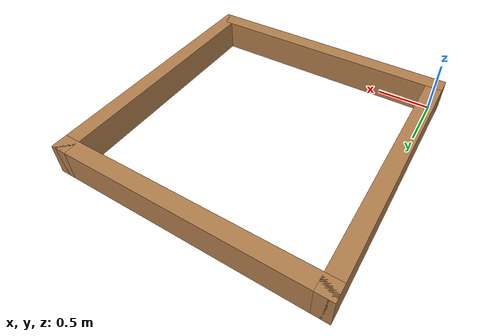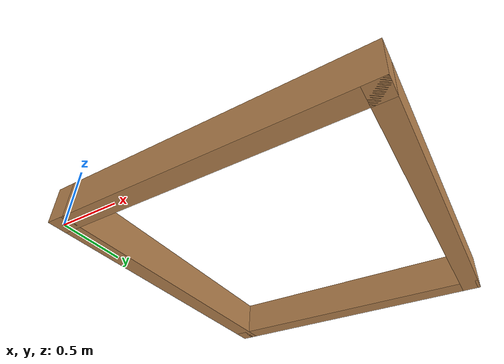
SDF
<?xml version='1.0'?>
<sdf version='1.6'>
  <model name='Pared'>
    <pose frame=''>1.175 1.175 0 0 -0 0</pose>
    <link name='Wall_23'>
      <collision name='Wall_23_Collision'>
        <geometry>
          <box>
            <size>2.5 0.15 0.3</size>
          </box>
        </geometry>
        <pose frame=''>0 0 0.15 0 -0 0</pose>
      </collision>
      <visual name='Wall_23_Visual'>
        <pose frame=''>0 0 0.15 0 -0 0</pose>
        <geometry>
          <box>
            <size>2.5 0.15 0.3</size>
          </box>
        </geometry>
        <material>
          <script>
            <uri>file://media/materials/scripts/gazebo.material</uri>
            <name>Gazebo/Wood</name>
          </script>
          <ambient>1 1 1 1</ambient>
        </material>
      </visual>
      <pose frame=''>-1.175 0 0 0 -0 1.5708</pose>
    </link>
    <link name='Wall_28'>
      <collision name='Wall_28_Collision'>
        <geometry>
          <box>
            <size>2.5 0.15 0.3</size>
          </box>
        </geometry>
        <pose frame=''>0 0 0.15 0 -0 0</pose>
      </collision>
      <visual name='Wall_28_Visual'>
        <pose frame=''>0 0 0.15 0 -0 0</pose>
        <geometry>
          <box>
            <size>2.5 0.15 0.3</size>
          </box>
        </geometry>
        <material>
          <script>
            <uri>file://media/materials/scripts/gazebo.material</uri>
            <name>Gazebo/Wood</name>
          </script>
          <ambient>1 1 1 1</ambient>
        </material>
      </visual>
      <pose frame=''>0 1.175 0 0 -0 0</pose>
    </link>
    <link name='Wall_29'>
      <collision name='Wall_29_Collision'>
        <geometry>
          <box>
            <size>2.5 0.15 0.3</size>
          </box>
        </geometry>
        <pose frame=''>0 0 0.15 0 -0 0</pose>
      </collision>
      <visual name='Wall_29_Visual'>
        <pose frame=''>0 0 0.15 0 -0 0</pose>
        <geometry>
          <box>
            <size>2.5 0.15 0.3</size>
          </box>
        </geometry>
        <material>
          <script>
            <uri>file://media/materials/scripts/gazebo.material</uri>
            <name>Gazebo/Wood</name>
          </script>
          <ambient>1 1 1 1</ambient>
        </material>
      </visual>
      <pose frame=''>1.175 0 0 0 0 -1.5708</pose>
    </link>
    <link name='Wall_30'>
      <collision name='Wall_30_Collision'>
        <geometry>
          <box>
            <size>2.5 0.15 0.3</size>
          </box>
        </geometry>
        <pose frame=''>0 0 0.15 0 -0 0</pose>
      </collision>
      <visual name='Wall_30_Visual'>
        <pose frame=''>0 0 0.15 0 -0 0</pose>
        <geometry>
          <box>
            <size>2.5 0.15 0.3</size>
          </box>
        </geometry>
        <material>
          <script>
            <uri>file://media/materials/scripts/gazebo.material</uri>
            <name>Gazebo/Wood</name>
          </script>
          <ambient>1 1 1 1</ambient>
        </material>
      </visual>
      <pose frame=''>0 -1.175 0 0 -0 3.14159</pose>
    </link>
    <static>1</static>
  </model>
</sdf>
